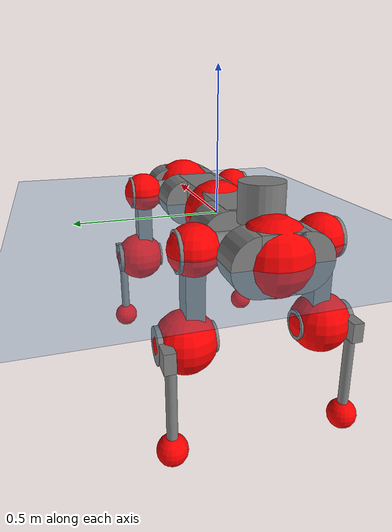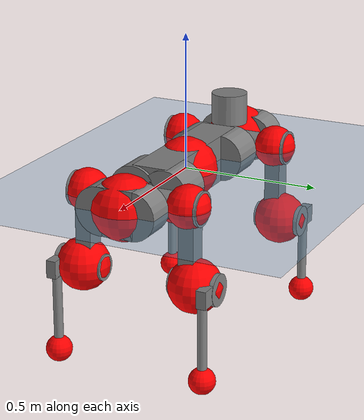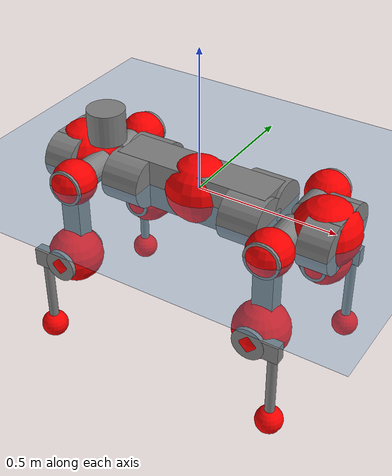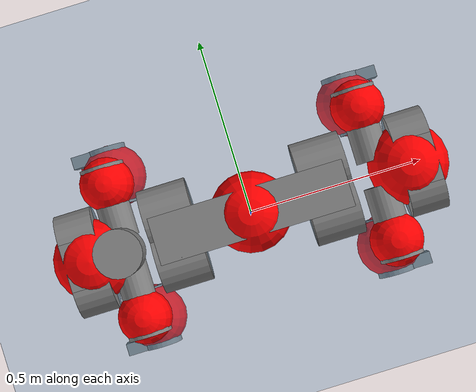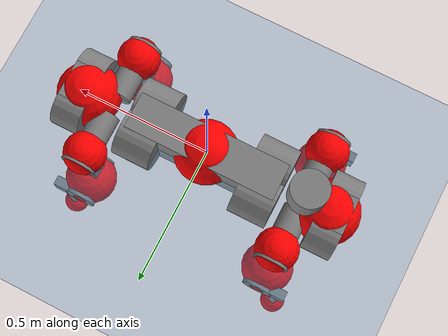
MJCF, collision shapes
<mujoco model="anymal_c">
  <compiler angle="radian" assetdir="assets" balanceinertia="true" inertiafromgeom="false"/>

  <option timestep="0.005" density="1.2" viscosity="2e-05"/>

  <size nkey="1"/>

  <visual>
    <quality shadowsize="8192"/>
    <map shadowclip="0.5"/>
  </visual>

  <default>
    <default class="/">
      <material specular="0" shininess="0.25"/>
      <geom contype="0" conaffinity="0" group="1" solref="-1000 -80"/>
      <site size="0.01 0.005 0.005" group="5"/>
      <general forcelimited="true" forcerange="-80 80" biastype="affine" gainprm="80" biasprm="0 -80 -2"/>
      <default class="anymal_c">
        <joint armature="0.01" damping="0.01" frictionloss="0.1"/>
        <default class="visual">
          <geom type="mesh" group="2"/>
          <default class="visual_zflip"/>
        </default>
        <default class="collision">
          <geom type="cylinder" group="3"/>
          <default class="foot">
            <geom size="0.03 0 0" type="sphere" condim="6" priority="1" friction="0.8 0.02 0.01" solimp="0.015 1 0.03"/>
          </default>
        </default>
      </default>
      <default class="reward_collision_sphere">
        <geom group="5" rgba="1 0 0 1"/>
      </default>
    </default>
  </default>

  <asset>
    <texture type="skybox" colorspace="auto" name="//unnamed_texture_0" builtin="gradient" rgb1="0.95 0.95 0.95" rgb2="0.95 0.95 0.95" width="100" height="600"/>
    <texture type="2d" colorspace="auto" name="texplane" builtin="checker" rgb1="0.345 0.575 0.748" rgb2="0.345 0.575 0.748" markrgb="1 1 1" width="512" height="512"/>
    <texture type="2d" colorspace="linear" name="base" file="base.png"/>
    <texture type="2d" colorspace="linear" name="top_shell" file="top_shell.png"/>
    <texture type="2d" colorspace="linear" name="bottom_shell" file="bottom_shell.png"/>
    <texture type="2d" colorspace="linear" name="remote" file="remote.png"/>
    <texture type="2d" colorspace="linear" name="hatch" file="hatch.png"/>
    <texture type="2d" colorspace="linear" name="handle" file="handle.png"/>
    <texture type="2d" colorspace="linear" name="face" file="face.png"/>
    <texture type="2d" colorspace="linear" name="battery" file="battery.png"/>
    <texture type="2d" colorspace="linear" name="lidar_cage" file="lidar_cage.png"/>
    <texture type="2d" colorspace="linear" name="depth_camera" file="depth_camera.png"/>
    <texture type="2d" colorspace="linear" name="wide_angle_camera" file="wide_angle_camera.png"/>
    <texture type="2d" colorspace="linear" name="lidar" file="lidar.png"/>
    <texture type="2d" colorspace="linear" name="drive" file="drive.png"/>
    <texture type="2d" colorspace="linear" name="hip_l" file="hip_l.png"/>
    <texture type="2d" colorspace="linear" name="shank_l" file="shank_l.png"/>
    <texture type="2d" colorspace="linear" name="foot" file="foot.png"/>
    <texture type="2d" colorspace="linear" name="thigh" file="thigh.png"/>
    <texture type="2d" colorspace="linear" name="shank_r" file="shank_r.png"/>
    <texture type="2d" colorspace="linear" name="hip_r" file="hip_r.png"/>
    <material name="MatPlane" class="/" texture="texplane" texuniform="true" texrepeat="2 2" specular="0.9" shininess="0.5"/>
    <material name="black_plastic" class="/" rgba="0.007 0.007 0.007 1"/>
    <material name="green" class="/" rgba="0.052 0.178 0.033 1"/>
    <material name="red" class="/" rgba="0.178 0.006 0.005 1"/>
    <material name="yellow" class="/" rgba="0.178 0.119 0.006 1"/>
    <material name="lwl" class="/" rgba="0.8 0.8 0.8 1"/>
    <material name="base" class="/" texture="base"/>
    <material name="top_shell" class="/" texture="top_shell"/>
    <material name="bottom_shell" class="/" texture="bottom_shell"/>
    <material name="hip_l" class="/" texture="hip_l"/>
    <material name="thigh" class="/" texture="thigh"/>
    <material name="shank_l" class="/" texture="shank_l"/>
    <material name="foot" class="/" texture="foot"/>
    <material name="hip_r" class="/" texture="hip_r"/>
    <material name="shank" class="/" texture="shank_r"/>
    <material name="hatch" class="/" texture="hatch"/>
    <material name="remote" class="/" texture="remote"/>
    <material name="handle" class="/" texture="handle"/>
    <material name="face" class="/" texture="face"/>
    <material name="depth_camera" class="/" texture="depth_camera"/>
    <material name="wide_angle_camera" class="/" texture="wide_angle_camera"/>
    <material name="battery" class="/" texture="battery"/>
    <material name="lidar_cage" class="/" texture="lidar_cage"/>
    <material name="lidar" class="/" texture="lidar"/>
    <material name="drive" class="/" texture="drive"/>
    <mesh name="base_0" class="/" file="base_0.obj"/>
    <mesh name="base_1" class="/" file="base_1.obj"/>
    <mesh name="base_2" class="/" file="base_2.obj"/>
    <mesh name="base_3" class="/" file="base_3.obj"/>
    <mesh name="base_4" class="/" file="base_4.obj"/>
    <mesh name="base_5" class="/" file="base_5.obj"/>
    <mesh name="top_shell" class="/" file="top_shell.obj"/>
    <mesh name="bottom_shell" class="/" file="bottom_shell.obj"/>
    <mesh name="remote" class="/" file="remote.obj"/>
    <mesh name="handle" class="/" file="handle.obj"/>
    <mesh name="face" class="/" file="face.obj"/>
    <mesh name="wide_angle_camera" class="/" file="wide_angle_camera.obj"/>
    <mesh name="depth_camera" class="/" file="depth_camera.obj"/>
    <mesh name="battery" class="/" file="battery.obj"/>
    <mesh name="lidar_cage" class="/" file="lidar_cage.obj"/>
    <mesh name="lidar" class="/" file="lidar.obj"/>
    <mesh name="drive" class="/" file="drive.obj"/>
    <mesh name="hip_l" class="/" file="hip_l.obj"/>
    <mesh name="thigh" class="/" file="thigh.obj"/>
    <mesh name="shank_l" class="/" file="shank_l.obj"/>
    <mesh name="foot" class="/" file="foot.obj"/>
    <mesh name="hip_r" class="/" file="hip_r.obj"/>
    <mesh name="hatch" class="/" file="hatch.obj"/>
    <mesh name="shank_r" class="/" file="shank_r.obj"/>
  </asset>

  <worldbody>
    <geom name="floor" class="/" size="100 100 0.125" type="plane" group="0" material="MatPlane"/>
    <light name="toplight_shadow" class="/" pos="0 0 5" dir="0.0990148 0.0990148 -0.990148" type="directional" ambient="0.04 0.04 0.04" diffuse="0.55 0.55 0.55" specular="0.12 0.12 0.12"/>
    <light name="toplight_fill" class="/" pos="0 0 5" dir="0.0990148 0.0990148 -0.990148" type="directional" castshadow="false" ambient="0.04 0.04 0.04" diffuse="0.3 0.3 0.3" specular="0.08 0.08 0.08"/>
    <body name="trunk" childclass="anymal_c" pos="0.000944487 -0.00084544 -2.83336e-05" quat="1 -1.49402e-06 2.49058e-05 2.20941e-05">
      <inertial pos="0.00248625 -0.000666257 0.0486805" quat="0.498676 0.500706 0.503487 0.497108" mass="17.2105" diaginertia="0.762769 0.346293 0.2062"/>
      <joint name="//unnamed_joint_0" type="free" armature="0" damping="0" frictionloss="0"/>
      <geom name="//unnamed_geom_1" class="visual" material="green" mesh="base_0"/>
      <geom name="//unnamed_geom_2" class="visual" material="yellow" mesh="base_1"/>
      <geom name="//unnamed_geom_3" class="visual" material="red" mesh="base_2"/>
      <geom name="//unnamed_geom_4" class="visual" material="black_plastic" mesh="base_3"/>
      <geom name="//unnamed_geom_5" class="visual" material="lwl" mesh="base_4"/>
      <geom name="//unnamed_geom_6" class="visual" material="base" mesh="base_5"/>
      <geom name="trunk_1" class="collision" size="0.281557 0.0679621 0.0873798" type="box"/>
      <geom name="trunk_2" class="collision" size="0.0873798 0.0703893" pos="0.224676 0.0623009 0" quat="0.707107 0 0.707107 0"/>
      <geom name="trunk_3" class="collision" size="0.0873798 0.0703893" pos="-0.224676 0.0623009 0" quat="0.707107 0 0.707107 0"/>
      <geom name="trunk_4" class="collision" size="0.0873798 0.0703893" pos="0.224676 -0.0623009 0" quat="0.707107 0 0.707107 0"/>
      <geom name="trunk_5" class="collision" size="0.0873798 0.0703893" pos="-0.224676 -0.0623009 0" quat="0.707107 0 0.707107 0"/>
      <geom name="//unnamed_geom_12" class="visual" material="top_shell" mesh="top_shell"/>
      <geom name="//unnamed_geom_13" class="visual" material="bottom_shell" mesh="bottom_shell"/>
      <geom name="//unnamed_geom_14" class="visual" material="remote" mesh="remote"/>
      <geom name="//unnamed_geom_15" class="visual" material="handle" mesh="handle"/>
      <geom name="//unnamed_geom_16" class="visual" pos="0.428175 0 0" quat="1 0 0 0" material="face" mesh="face"/>
      <geom name="trunk_6" class="collision" size="0.0533988 0.0679621 0.0873798" pos="0.484989 0 0" type="box"/>
      <geom name="//unnamed_geom_18" class="collision" size="0.0873798 0.0533988" pos="0.484989 0.0623009 0" quat="0.707107 0 0.707107 0"/>
      <geom name="//unnamed_geom_19" class="collision" size="0.0873798 0.0533988" pos="0.484989 -0.0623009 0" quat="0.707107 0 0.707107 0"/>
      <geom name="//unnamed_geom_20" class="visual" pos="0.476879 0 -0.0285686" quat="0.965926 0 0.258819 0" material="depth_camera" mesh="depth_camera"/>
      <geom name="//unnamed_geom_21" class="visual" pos="0.529925 0 0.0148152" material="wide_angle_camera" mesh="wide_angle_camera"/>
      <geom name="//unnamed_geom_22" class="visual_zflip" pos="-0.428175 0 0" quat="0 0 0 1" material="face" mesh="face"/>
      <geom name="trunk_7" class="collision" size="0.0533988 0.0679621 0.0873798" pos="-0.484989 0 0" quat="0 0 0 1" type="box"/>
      <geom name="//unnamed_geom_24" class="collision" size="0.0873798 0.0533988" pos="-0.484989 -0.0623009 0" quat="0 -0.707107 0 0.707107"/>
      <geom name="//unnamed_geom_25" class="collision" size="0.0873798 0.0533988" pos="-0.484989 0.0623009 0" quat="0 -0.707107 0 0.707107"/>
      <geom name="//unnamed_geom_26" class="visual" pos="-0.476879 0 -0.0285686" quat="0 -0.258819 0 0.965926" material="depth_camera" mesh="depth_camera"/>
      <geom name="//unnamed_geom_27" class="visual_zflip" pos="-0.529925 0 0.0148152" quat="0 0 0 1" material="wide_angle_camera" mesh="wide_angle_camera"/>
      <geom name="//unnamed_geom_28" class="visual" material="battery" mesh="battery"/>
      <geom name="//unnamed_geom_29" class="visual" pos="0 0.0661723 0.0290789" quat="0.683013 -0.183013 0.183013 0.683013" material="depth_camera" mesh="depth_camera"/>
      <geom name="//unnamed_geom_30" class="visual" pos="0 -0.0661723 0.0290789" quat="0.683013 0.183013 0.183013 -0.683013" material="depth_camera" mesh="depth_camera"/>
      <geom name="//unnamed_geom_31" class="visual" pos="-0.376009 0 0.0727397" quat="1 0 0 0" material="lidar_cage" mesh="lidar_cage"/>
      <geom name="trunk_8" class="collision" size="0.0679621 0.0582532" pos="-0.376009 0 0.132119"/>
      <geom name="//unnamed_geom_33" class="visual" pos="-0.376009 -5.61727e-05 0.140729" quat="0.707107 0 0 -0.707107" material="lidar" mesh="lidar"/>
      <geom name="//unnamed_geom_34" class="visual" pos="0.309794 0.0925967 -1.71887e-09" quat="0.258819 0.965926 0 0" material="drive" mesh="drive"/>
      <geom name="//unnamed_geom_35" class="visual" pos="0.309794 -0.0925967 1.71887e-09" quat="0.258819 -0.965926 0 0" material="drive" mesh="drive"/>
      <geom name="//unnamed_geom_36" class="visual" pos="-0.309794 0.0925967 1.71887e-09" quat="0 0 0.965926 -0.258819" material="drive" mesh="drive"/>
      <geom name="//unnamed_geom_37" class="visual" pos="-0.309794 -0.0925967 -1.71887e-09" quat="0 0 -0.965926 -0.258819" material="drive" mesh="drive"/>
      <geom name="//unnamed_geom_38" class="visual" pos="0.119827 0 0.0722449" quat="1 0 0 0" material="hatch" mesh="hatch"/>
      <geom name="//unnamed_geom_39" class="reward_collision_sphere" size="0.116506"/>
      <geom name="//unnamed_geom_40" class="reward_collision_sphere" size="0.116506" pos="0.464846 0 0"/>
      <geom name="//unnamed_geom_41" class="reward_collision_sphere" size="0.116506" pos="-0.464846 0 0"/>
      <site name="imu" pos="0.256128 0.00480755 0.0381038" size="0.00970887"/>
      <camera name="track" pos="0 -1.78002 0" quat="0.707107 0.707107 0 0" mode="trackcom"/>
      <camera name="ego_camera" pos="0.464846 0 -0.0395863" quat="-0.5 -0.5 0.5 0.5"/>
      <body name="LF_HIP" pos="0.310865 0.0928766 0.00151287" quat="0.259031 0.965869 -8.82802e-05 0.000180544">
        <inertial pos="0.0572935 -0.012499 -0.00819995" quat="-0.127088 0.710125 -0.134985 0.679228" mass="2.54729" diaginertia="0.00689015 0.00276502 0.00311784"/>
        <joint name="LF_HAA" pos="0 0 0" axis="0.999924 -0.00946026 -0.00787998" range="-0.721974 0.488508" armature="0.00897859" damping="0.0123056" frictionloss="0.092267"/>
        <geom name="//unnamed_geom_42" class="visual" pos="0 -0.000101114 1.66078e-05" quat="0.258819 -0.965926 0 0" material="hip_l" mesh="hip_l"/>
        <geom name="//unnamed_geom_43" class="visual" pos="0.0618762 -0.073129 -0.0429581" quat="0.183013 -0.683013 0.683013 0.183013" material="drive" mesh="drive"/>
        <geom name="//unnamed_geom_44" class="collision" size="0.0485443 0.0679621" pos="0.0618762 -0.0106444 -0.00683358" quat="-0.353553 -0.612372 0.612372 -0.353553"/>
        <body name="LF_THIGH" pos="0.0630893 -0.0653772 -0.041338" quat="0.182818 -0.683278 0.682883 0.182702">
          <inertial pos="0.0322983 0.000171309 -0.244787" quat="0.993386 -0.00943288 -0.0783183 0.083432" mass="2.82336" diaginertia="0.0357209 0.0168278 0.00401905"/>
          <joint name="LF_HFE" pos="0 0 0" axis="0.999987 -0.00146723 0.00485827" range="-3.15971 3.13711" armature="0.00995221" damping="0.0137179" frictionloss="0.101245"/>
          <geom name="//unnamed_geom_45" class="visual" pos="0.00284472 4.48262e-06 0" quat="0.707107 0 0 -0.707107" material="thigh" mesh="thigh"/>
          <geom name="//unnamed_geom_46" class="collision" size="0.0631076 0.0388355" pos="0.0413197 0 0" quat="0.5 0.5 -0.5 -0.5"/>
          <geom name="//unnamed_geom_47" class="collision" size="0.0364082 0.0291266 0.1372" pos="0.0309897 0 -0.139852" quat="0.707107 0 0 -0.707107" type="box"/>
          <geom name="//unnamed_geom_48" class="visual" pos="0.103609 0 -0.282052" quat="1 0 0 0" material="drive" mesh="drive"/>
          <geom name="//unnamed_geom_49" class="collision" size="0.0485443 0.0679621" pos="0.0312996 0 -0.282052" quat="0.707107 0 0.707107 0"/>
          <geom name="//unnamed_geom_50" class="reward_collision_sphere" size="0.0776709" pos="0.0258248 0 0"/>
          <body name="LF_SHANK" pos="0.103861 -0.00218035 -0.28241" quat="1 0.000101376 4.76736e-06 0.000134733">
            <inertial pos="0.00463182 -0.0546904 -0.0797517" quat="0.992668 -0.117071 -0.00606527 -0.0294621" mass="0.528445" diaginertia="0.0118397 0.00512211 0.00104516"/>
            <joint name="LF_KFE" pos="0 0 0" axis="0.999998 0.00137534 -0.00174637" range="-3.13677 3.12901" armature="0.00983015" damping="0.00743779" frictionloss="0.0984686"/>
            <geom name="//unnamed_geom_51" class="visual" pos="0.000927603 0.00494602 0" quat="0.707107 0 0 -0.707107" material="shank_l" mesh="shank_l"/>
            <geom name="LF_kfe_act" class="collision" size="0.0582532 0.0194177" pos="0.0206598 0 0" quat="0.5 0.5 -0.5 -0.5"/>
            <geom name="//unnamed_geom_53" class="collision" size="0.055825 0.0327674 0.0184468" pos="0.0206598 -0.0511748 0" quat="0.5 0.5 -0.5 -0.5" type="box"/>
            <geom name="//unnamed_geom_54" class="visual" pos="0.0134803 -0.0766827 -0.334474" quat="0.382683 0 0 -0.92388" material="foot" mesh="foot"/>
            <geom name="LF_calf" class="collision" size="0.0169905 0.13714" pos="0.0134805 -0.0782766 -0.167237" quat="0.707107 0 0 -0.707107"/>
            <geom name="LF_foot" class="foot" size="0.0295718" pos="0.0134805 -0.0782766 -0.312207" quat="0.707107 0 0 -0.707107"/>
            <geom name="//unnamed_geom_57" class="reward_collision_sphere" size="0.0970887" pos="-0.0516496 0 0"/>
            <geom name="//unnamed_geom_58" class="reward_collision_sphere" size="0.0485443" pos="0.0134805 -0.0782766 -0.312207"/>
            <site name="LF_foot" class="foot" pos="0.0134805 -0.0782766 -0.312207" quat="0.707107 0 0 -0.707107" size="0.00970887"/>
          </body>
        </body>
      </body>
      <body name="RF_HIP" pos="0.308736 -0.0914583 0.000147884" quat="0.258591 -0.965987 0.000144818 9.56778e-05">
        <inertial pos="0.0603032 0.0134939 -0.00949151" quat="0.134006 0.676766 0.127895 0.712512" mass="2.60751" diaginertia="0.00702652 0.00281531 0.00318343"/>
        <joint name="RF_HAA" pos="0 0 0" axis="0.999979 -7.98785e-05 -0.00649039" range="-0.519167 0.732116" armature="0.0097883" damping="0.0130842" frictionloss="0.0945437"/>
        <geom name="//unnamed_geom_59" class="visual" pos="0 0.000101113 1.66078e-05" quat="0.258819 0.965926 0 0" material="hip_r" mesh="hip_r"/>
        <geom name="//unnamed_geom_60" class="visual" pos="0.0618762 0.073129 -0.0429581" quat="0.183013 0.683013 0.683013 -0.183013" material="drive" mesh="drive"/>
        <geom name="//unnamed_geom_61" class="collision" size="0.0485443 0.0679621" pos="0.0618762 0.0106444 -0.00683358" quat="-0.353553 0.612372 0.612372 0.353553"/>
        <body name="RF_THIGH" pos="0.0621665 0.0654627 -0.0425598" quat="0.183015 0.682965 0.683068 -0.182982">
          <inertial pos="0.0329053 0.00186365 -0.242973" quat="0.992814 -0.00464278 -0.0804526 0.0884644" mass="2.79051" diaginertia="0.0352993 0.016684 0.00394642"/>
          <joint name="RF_HFE" pos="0 0 0" axis="0.999989 -0.0010999 -0.00461433" stiffness="0.004891" range="-3.15242 3.11947" armature="0.00984236" damping="0.00584077" frictionloss="0.0990831"/>
          <geom name="//unnamed_geom_62" class="visual" pos="0.00284472 4.48262e-06 0" quat="0.707107 0 0 -0.707107" material="thigh" mesh="thigh"/>
          <geom name="//unnamed_geom_63" class="collision" size="0.0631076 0.0388355" pos="0.0413197 0 0" quat="0.5 0.5 0.5 0.5"/>
          <geom name="//unnamed_geom_64" class="collision" size="0.0364082 0.0291266 0.1372" pos="0.0309897 0 -0.139852" quat="0.707107 0 0 0.707107" type="box"/>
          <geom name="//unnamed_geom_65" class="visual" pos="0.103609 0 -0.282052" quat="1 0 0 0" material="drive" mesh="drive"/>
          <geom name="//unnamed_geom_66" class="collision" size="0.0485443 0.0679621" pos="0.0312996 0 -0.282052" quat="0.707107 0 0.707107 0"/>
          <geom name="//unnamed_geom_67" class="reward_collision_sphere" size="0.0776709" pos="0.0258248 0 0"/>
          <body name="RF_SHANK" pos="0.1029 -0.000412352 -0.281318" quat="1 0.000255404 0.000754906 0.000356373">
            <inertial pos="0.00787837 0.0551117 -0.0790284" quat="0.992814 0.116479 -7.56673e-05 0.0274462" mass="0.5313" diaginertia="0.0117312 0.0051689 0.00107754"/>
            <joint name="RF_KFE" pos="0 0 0" axis="0.999998 -0.00168511 -0.00112954" range="-3.15946 3.13707" armature="0.00998155" damping="0.013856" frictionloss="0.101177"/>
            <geom name="//unnamed_geom_68" class="visual" pos="0.000927598 -0.00494601 0" quat="0.707107 0 0 0.707107" material="shank" mesh="shank_r"/>
            <geom name="RF_kfe_act" class="collision" size="0.0582532 0.0194177" pos="0.0206598 0 0" quat="0.5 0.5 0.5 0.5"/>
            <geom name="//unnamed_geom_70" class="collision" size="0.055825 0.0327674 0.0184468" pos="0.0206598 0.0511748 0" quat="0.5 0.5 0.5 0.5" type="box"/>
            <geom name="//unnamed_geom_71" class="visual" pos="0.0134808 0.0766827 -0.334474" quat="0.382683 0 0 0.92388" material="foot" mesh="foot"/>
            <geom name="RF_calf" class="collision" size="0.0169905 0.13714" pos="0.0134805 0.0782766 -0.167237" quat="0.707107 0 0 0.707107"/>
            <geom name="RF_foot" class="foot" size="0.029096" pos="0.0134805 0.0782766 -0.312207" quat="0.707107 0 0 0.707107"/>
            <geom name="//unnamed_geom_74" class="reward_collision_sphere" size="0.0970887" pos="-0.0516496 0 0"/>
            <geom name="//unnamed_geom_75" class="reward_collision_sphere" size="0.0485443" pos="0.0134805 0.0782766 -0.312207"/>
            <site name="RF_foot" class="foot" pos="0.0134805 0.0782766 -0.312207" quat="0.707107 0 0 0.707107" size="0.00970887"/>
          </body>
        </body>
      </body>
      <body name="LH_HIP" pos="-0.307126 0.0923135 0.000655605" quat="9.89914e-06 5.56839e-05 0.965936 -0.258783">
        <inertial pos="0.0600964 0.0114314 -0.00810844" quat="0.136221 0.680915 0.12516 0.708614" mass="2.56977" diaginertia="0.00688461 0.00273666 0.00309027"/>
        <joint name="LH_HAA" pos="0 0 0" axis="0.999994 -0.00281546 0.00221769" range="-0.502613 0.704644" armature="0.00965932" damping="0.00964175" frictionloss="0.100263"/>
        <geom name="//unnamed_geom_76" class="visual" pos="0 0.000101113 1.66078e-05" quat="-0.258819 -0.965926 0 0" material="hip_r" mesh="hip_r"/>
        <geom name="//unnamed_geom_77" class="visual" pos="0.0618762 0.073129 -0.0429581" quat="0.183013 0.683013 0.683013 -0.183013" material="drive" mesh="drive"/>
        <geom name="//unnamed_geom_78" class="collision" size="0.0485443 0.0679621" pos="0.0618762 0.0106444 -0.00683358" quat="-0.353553 0.612372 0.612372 0.353553"/>
        <body name="LH_THIGH" pos="0.0604164 0.063858 -0.0424495" quat="0.182883 0.683118 0.682878 -0.183251">
          <inertial pos="0.0322018 0.00139383 -0.243015" quat="0.992808 -0.00481617 -0.0802834 0.0886787" mass="2.81225" diaginertia="0.0356765 0.0166247 0.00387129"/>
          <joint name="LH_HFE" pos="0 0 0" axis="0.999994 -0.00262641 -0.00203109" range="-3.14978 3.12701" armature="0.0103199" damping="0.00561991" frictionloss="0.09986"/>
          <geom name="//unnamed_geom_79" class="visual" pos="0.00284472 4.48262e-06 0" quat="0.707107 0 0 -0.707107" material="thigh" mesh="thigh"/>
          <geom name="//unnamed_geom_80" class="collision" size="0.0631076 0.0388355" pos="0.0413197 0 0" quat="0.5 0.5 -0.5 -0.5"/>
          <geom name="//unnamed_geom_81" class="collision" size="0.0364082 0.0291266 0.1372" pos="0.0309897 0 -0.139852" quat="0.707107 0 0 -0.707107" type="box"/>
          <geom name="//unnamed_geom_82" class="visual" pos="0.103609 0 -0.282052" quat="1 0 0 0" material="drive" mesh="drive"/>
          <geom name="//unnamed_geom_83" class="collision" size="0.0485443 0.0679621" pos="0.0312996 0 -0.282052" quat="0.707107 0 0.707107 0"/>
          <geom name="//unnamed_geom_84" class="reward_collision_sphere" size="0.0776709" pos="0.0258248 0 0"/>
          <body name="LH_SHANK" pos="0.104506 -0.000386053 -0.284222" quat="0.999999 2.90045e-05 0.000374727 0.000983611">
            <inertial pos="0.00600643 0.0545192 -0.0777794" quat="0.992445 0.119357 -0.000686017 0.0284118" mass="0.532391" diaginertia="0.0120307 0.00523649 0.00106144"/>
            <joint name="LH_KFE" pos="0 0 0" axis="0.999976 0.00490938 0.00484258" range="-3.13838 3.15246" armature="0.00978963" damping="0.00893332" frictionloss="0.0963304"/>
            <geom name="//unnamed_geom_85" class="visual" pos="0.000927598 -0.00494601 0" quat="-0.707107 0 0 -0.707107" material="shank" mesh="shank_r"/>
            <geom name="LH_kfe_act" class="collision" size="0.0582532 0.0194177" pos="0.0206598 0 0" quat="0.5 0.5 -0.5 -0.5"/>
            <geom name="//unnamed_geom_87" class="collision" size="0.055825 0.0327674 0.0184468" pos="0.0206598 0.0511748 0" quat="0.5 0.5 -0.5 -0.5" type="box"/>
            <geom name="//unnamed_geom_88" class="visual" pos="0.0134808 0.0766827 -0.334474" quat="-0.382683 0 0 -0.92388" material="foot" mesh="foot"/>
            <geom name="LH_calf" class="collision" size="0.0169905 0.13714" pos="0.0134805 0.0782766 -0.167237" quat="0.707107 0 0 -0.707107"/>
            <geom name="LH_foot" class="foot" size="0.0302781" pos="0.0134805 0.0782766 -0.312207" quat="0.707107 0 0 -0.707107"/>
            <geom name="//unnamed_geom_91" class="reward_collision_sphere" size="0.0970887" pos="-0.0516496 0 0"/>
            <geom name="//unnamed_geom_92" class="reward_collision_sphere" size="0.0485443" pos="0.0134805 0.0782766 -0.312207"/>
            <site name="LH_foot" class="foot" pos="0.0134805 0.0782766 -0.312207" quat="0.707107 0 0 -0.707107" size="0.00970887"/>
          </body>
        </body>
      </body>
      <body name="RH_HIP" pos="-0.311233 -0.0933221 -5.02588e-05" quat="3.81342e-05 -0.00044524 -0.965883 -0.258977">
        <inertial pos="0.0583855 -0.0146569 -0.00842554" quat="-0.121885 0.707546 -0.13689 0.682483" mass="2.5299" diaginertia="0.00677831 0.00271258 0.00308018"/>
        <joint name="RH_HAA" pos="0 0 0" axis="0.999954 0.00751062 0.00598696" range="-0.725189 0.479102" armature="0.00993314" damping="0.00560487" frictionloss="0.0960345"/>
        <geom name="//unnamed_geom_93" class="visual" pos="0 -0.000101114 1.66078e-05" quat="-0.258819 0.965926 0 0" material="hip_l" mesh="hip_l"/>
        <geom name="//unnamed_geom_94" class="visual" pos="0.0618762 -0.073129 -0.0429581" quat="-0.183013 0.683013 -0.683013 -0.183013" material="drive" mesh="drive"/>
        <geom name="//unnamed_geom_95" class="collision" size="0.0485443 0.0679621" pos="0.0618762 -0.0106444 -0.00683358" quat="0.353553 0.612372 -0.612372 0.353553"/>
        <body name="RH_THIGH" pos="0.0623031 -0.0639592 -0.0407142" quat="-0.182874 0.682941 -0.683056 -0.183259">
          <inertial pos="0.0318309 -0.000240752 -0.243481" quat="0.99309 -0.00342442 -0.0743343 0.0907484" mass="2.81139" diaginertia="0.035743 0.0168068 0.00406999"/>
          <joint name="RH_HFE" pos="0 0 0" axis="0.999996 0.00192385 0.00225201" range="-3.14155 3.12664" armature="0.00994486" damping="0.0018137" frictionloss="0.101894"/>
          <geom name="//unnamed_geom_96" class="visual" pos="0.00284472 4.48262e-06 0" quat="0.707107 0 0 -0.707107" material="thigh" mesh="thigh"/>
          <geom name="//unnamed_geom_97" class="collision" size="0.0631076 0.0388355" pos="0.0413197 0 0" quat="0.5 0.5 0.5 0.5"/>
          <geom name="//unnamed_geom_98" class="collision" size="0.0364082 0.0291266 0.1372" pos="0.0309897 0 -0.139852" quat="0.707107 0 0 0.707107" type="box"/>
          <geom name="//unnamed_geom_99" class="visual" pos="0.103609 0 -0.282052" quat="1 0 0 0" material="drive" mesh="drive"/>
          <geom name="//unnamed_geom_100" class="collision" size="0.0485443 0.0679621" pos="0.0312996 0 -0.282052" quat="0.707107 0 0.707107 0"/>
          <geom name="//unnamed_geom_101" class="reward_collision_sphere" size="0.0776709" pos="0.0258248 0 0"/>
          <body name="RH_SHANK" pos="0.103343 0.000246606 -0.282286" quat="1 6.4536e-06 -1.07139e-06 7.08628e-05">
            <inertial pos="0.00488656 -0.0560396 -0.0785251" quat="0.992894 -0.116291 -0.000692173 -0.0252359" mass="0.540222" diaginertia="0.0119788 0.00518476 0.0010566"/>
            <joint name="RH_KFE" pos="0 0 0" axis="0.999987 -0.00246828 0.00442687" stiffness="0.00157262" range="-3.12214 3.16218" armature="0.00973842" damping="0.0089968" frictionloss="0.10426"/>
            <geom name="//unnamed_geom_102" class="visual" pos="0.000927603 0.00494602 0" quat="0.707107 0 0 -0.707107" material="shank_l" mesh="shank_l"/>
            <geom name="RH_kfe_act" class="collision" size="0.0582532 0.0194177" pos="0.0206598 0 0" quat="0.5 0.5 0.5 0.5"/>
            <geom name="//unnamed_geom_104" class="collision" size="0.055825 0.0327674 0.0184468" pos="0.0206598 -0.0511748 0" quat="0.5 0.5 0.5 0.5" type="box"/>
            <geom name="//unnamed_geom_105" class="visual" pos="0.0134803 -0.0766827 -0.334474" quat="0.382683 0 0 -0.92388" material="foot" mesh="foot"/>
            <geom name="RH_calf" class="collision" size="0.0169905 0.13714" pos="0.0134805 -0.0782766 -0.167237" quat="0.707107 0 0 0.707107"/>
            <geom name="RH_foot" class="foot" size="0.0278583" pos="0.0134805 -0.0782766 -0.312207" quat="0.707107 0 0 0.707107"/>
            <geom name="//unnamed_geom_108" class="reward_collision_sphere" size="0.0970887" pos="-0.0516496 0 0"/>
            <geom name="//unnamed_geom_109" class="reward_collision_sphere" size="0.0485443" pos="0.0134805 -0.0782766 -0.312207"/>
            <site name="RH_foot" class="foot" pos="0.0134805 -0.0782766 -0.312207" quat="0.707107 0 0 0.707107" size="0.00970887"/>
          </body>
        </body>
      </body>
    </body>
  </worldbody>

  <contact>
    <pair class="/" geom1="floor" geom2="LF_foot" name="//unnamed_contact_0"/>
    <pair class="/" geom1="floor" geom2="RF_foot" name="//unnamed_contact_1"/>
    <pair class="/" geom1="floor" geom2="LH_foot" name="//unnamed_contact_2"/>
    <pair class="/" geom1="floor" geom2="RH_foot" name="//unnamed_contact_3"/>
  </contact>

  <actuator>
    <general name="LF_HAA" class="/" joint="LF_HAA" forcerange="-78.3552 78.3552" gainprm="78.6862" biasprm="0 -78.6862 -1.87476"/>
    <general name="LF_HFE" class="/" joint="LF_HFE" forcerange="-76.3541 76.3541" gainprm="78.6862" biasprm="0 -78.6862 -1.87476"/>
    <general name="LF_KFE" class="/" joint="LF_KFE" forcerange="-74.988 74.988" gainprm="78.6862" biasprm="0 -78.6862 -1.87476"/>
    <general name="RF_HAA" class="/" joint="RF_HAA" forcerange="-78.8149 78.8149" gainprm="78.6862" biasprm="0 -78.6862 -1.87476"/>
    <general name="RF_HFE" class="/" joint="RF_HFE" forcerange="-80.5097 80.5097" gainprm="78.6862" biasprm="0 -78.6862 -1.87476"/>
    <general name="RF_KFE" class="/" joint="RF_KFE" forcerange="-75.768 75.768" gainprm="78.6862" biasprm="0 -78.6862 -1.87476"/>
    <general name="LH_HAA" class="/" joint="LH_HAA" forcerange="-77.7065 77.7065" gainprm="78.6862" biasprm="0 -78.6862 -1.87476"/>
    <general name="LH_HFE" class="/" joint="LH_HFE" forcerange="-76.4217 76.4217" gainprm="78.6862" biasprm="0 -78.6862 -1.87476"/>
    <general name="LH_KFE" class="/" joint="LH_KFE" forcerange="-81.2366 81.2366" gainprm="78.6862" biasprm="0 -78.6862 -1.87476"/>
    <general name="RH_HAA" class="/" joint="RH_HAA" forcerange="-78.8195 78.8195" gainprm="78.6862" biasprm="0 -78.6862 -1.87476"/>
    <general name="RH_HFE" class="/" joint="RH_HFE" forcerange="-75.8911 75.8911" gainprm="78.6862" biasprm="0 -78.6862 -1.87476"/>
    <general name="RH_KFE" class="/" joint="RH_KFE" forcerange="-72.687 72.687" gainprm="78.6862" biasprm="0 -78.6862 -1.87476"/>
  </actuator>

  <sensor>
    <gyro site="imu" name="imu_angular_velocity"/>
    <velocimeter site="imu" name="imu_linear_velocity"/>
    <framelinvel objtype="site" objname="LF_foot" name="LF_foot_global_linear_velocity"/>
    <framelinvel objtype="site" objname="RF_foot" name="RF_foot_global_linear_velocity"/>
    <framelinvel objtype="site" objname="LH_foot" name="LH_foot_global_linear_velocity"/>
    <framelinvel objtype="site" objname="RH_foot" name="RH_foot_global_linear_velocity"/>
  </sensor>

  <keyframe>
    <key name="home" qpos="0 0 0.55 1 0 0 0 0 0.4 -0.8 0 -0.4 0.8 0 -0.4 0.8 0 0.4 -0.8"/>
  </keyframe>
</mujoco>
